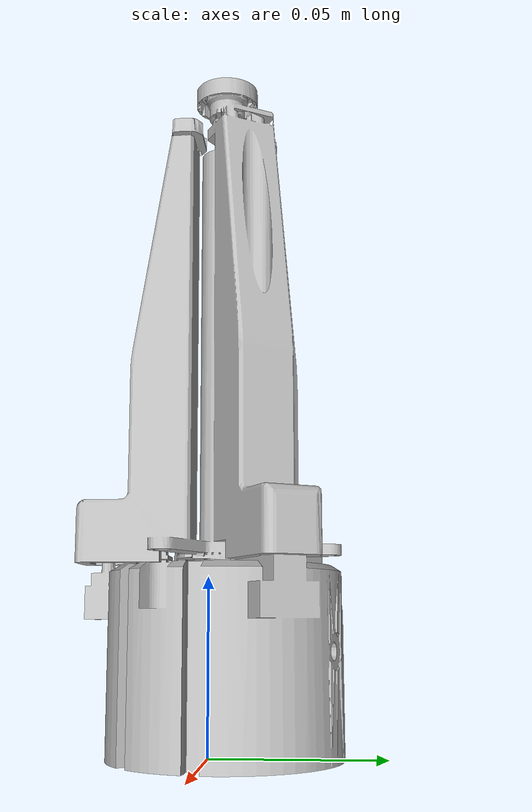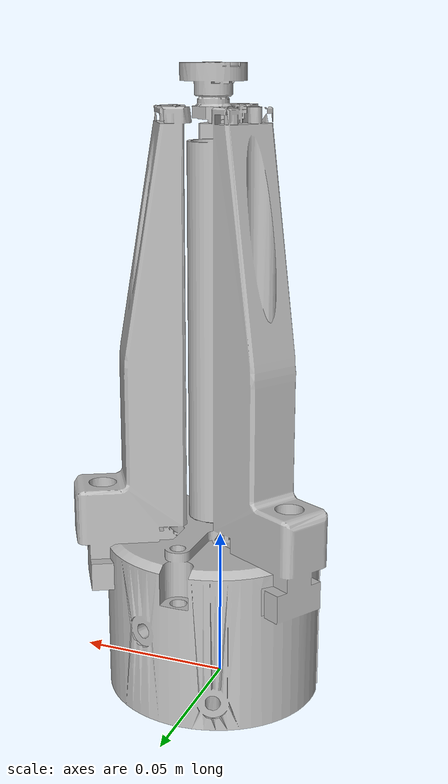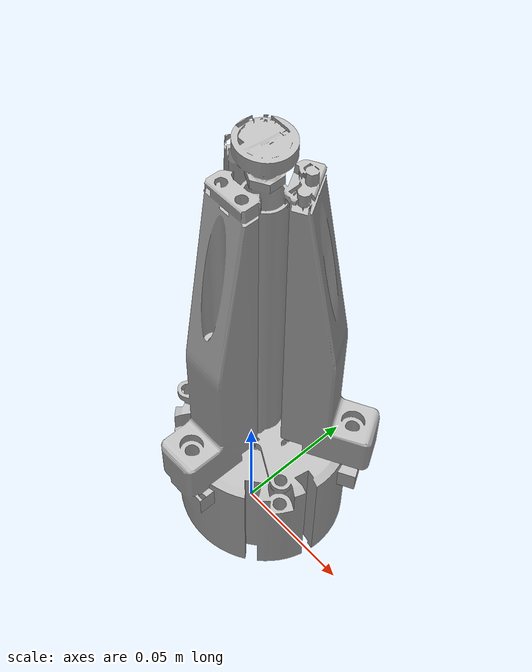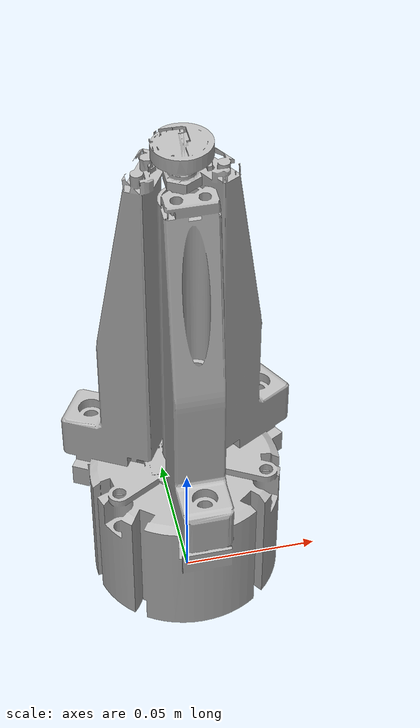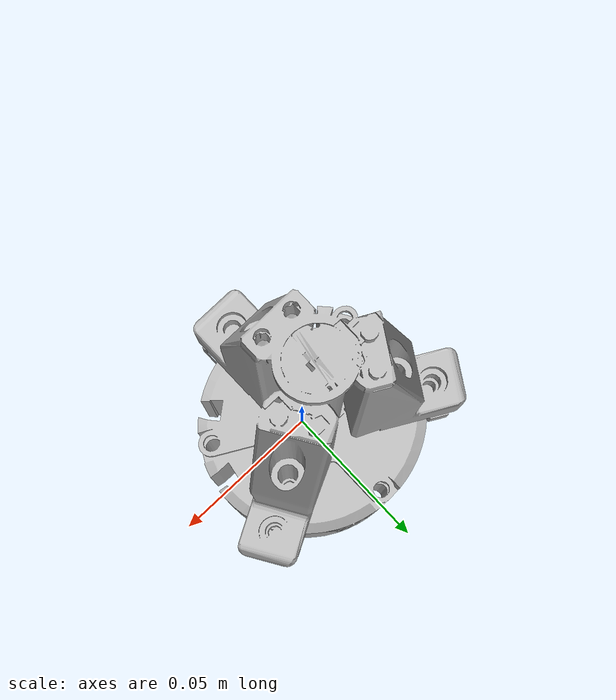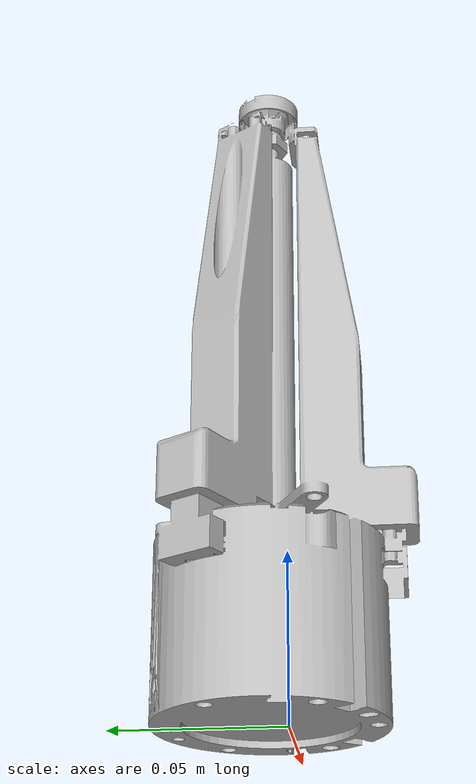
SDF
<?xml version="1.0" ?>
<sdf version="1.5">
  <model name="gripper">
    <static>false</static>
    <link name="gripper">
      <collision name="collision">
        <geometry>
          <mesh>
            <uri>model://gripper/meshes/gripper_v9red.stl</uri>
            <scale>0.001 0.001 0.001</scale>
          </mesh>
        </geometry>
      </collision>
      <visual name="visual">
        <geometry>
          <mesh>
            <uri>model://gripper/meshes/gripper_v9red.stl</uri>
            <scale>0.001 0.001 0.001</scale>
          </mesh>
        </geometry>
      </visual>
    </link>
  </model>
</sdf>
